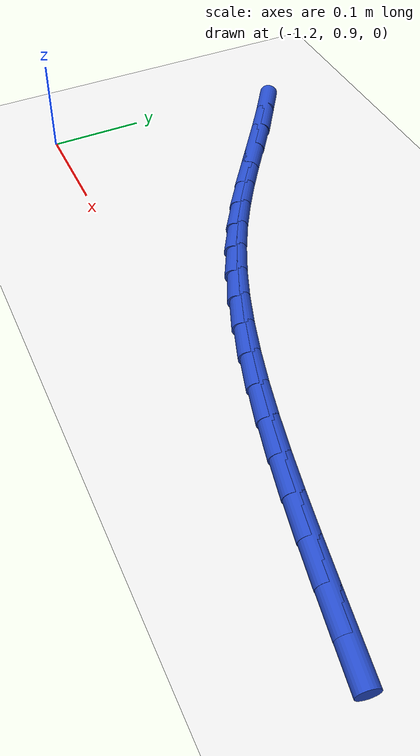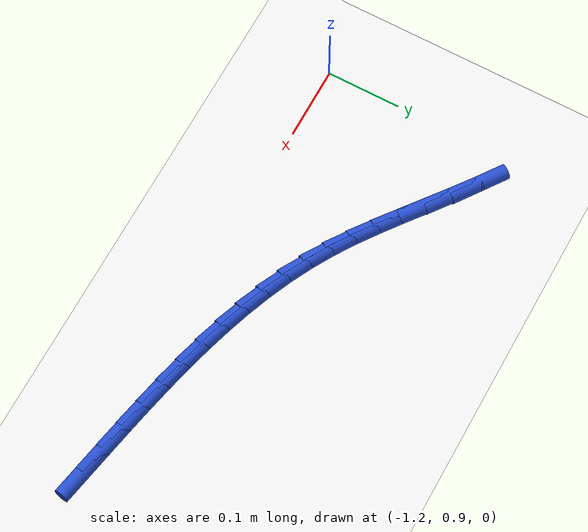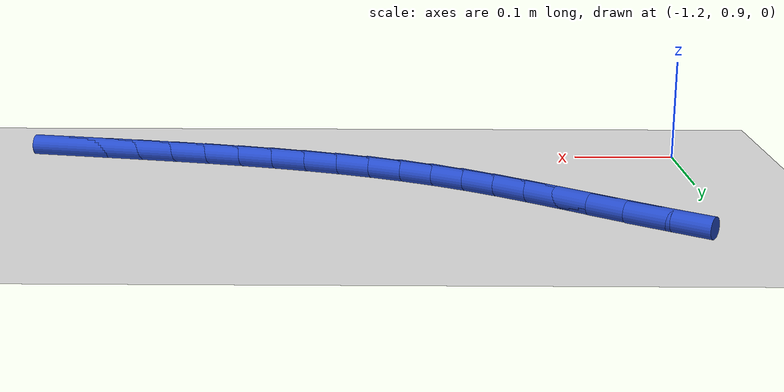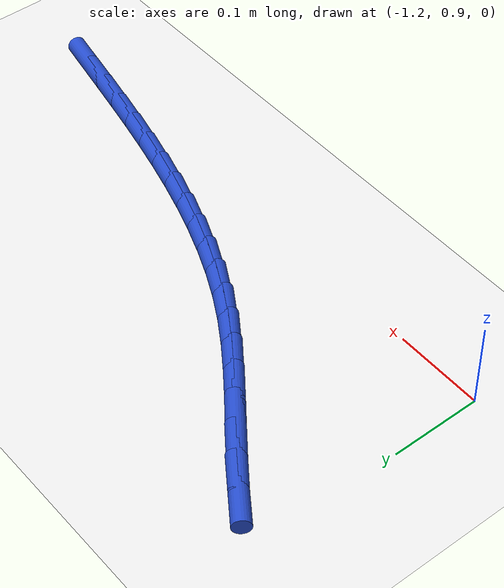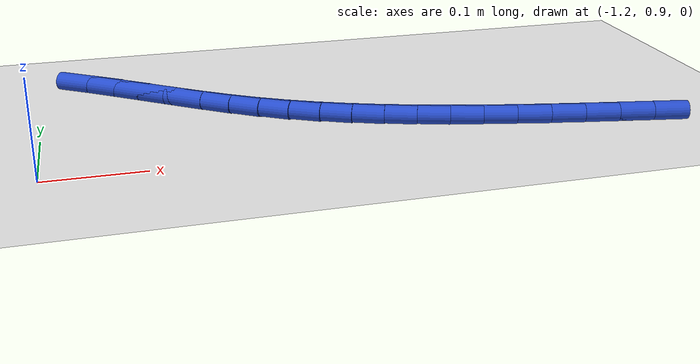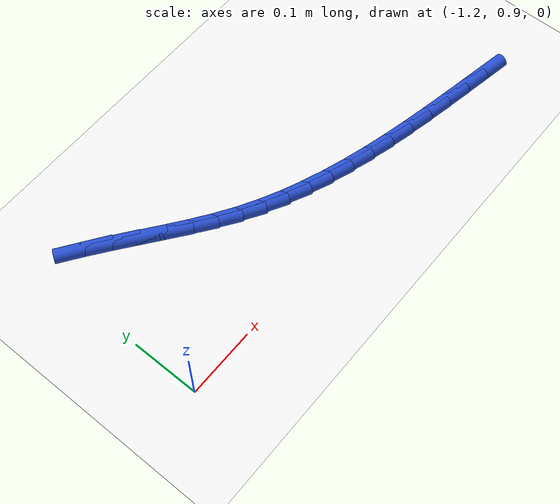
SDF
<sdf version="1.6">
 <world name="default">
  <model name="ground_plane">
   <static>1</static>
   <link name="link">
    <collision name="collision">
     <geometry><plane><normal>0 0 1</normal><size>100 100</size></plane></geometry>
     <surface><friction><ode><mu>100</mu><mu2>50</mu2></ode></friction></surface>
    </collision>
    <visual name="visual">
     <cast_shadows>0</cast_shadows>
     <geometry><plane><normal>0 0 1</normal><size>100 100</size></plane></geometry>
     <material>
      <script><uri>file://media/materials/scripts/gazebo.material</uri><name>Gazebo/WhiteGlow</name></script>
     </material>
    </visual>
   </link>
  </model>
  <model name="line">
   <link name="link_35">
    <pose>-0.5815870989121935 0.8989327731220603 0.01 0 1.57 -0.18526287010277862</pose>
    <collision name="collision">
     <geometry><cylinder><radius>0.01</radius><length>0.08</length></cylinder></geometry>
    </collision>
    <visual name="visual">
     <material>
      <script><name>Gazebo/Blue</name><uri>file://media/materials/scripts/gazebo.material</uri></script>
     </material>
     <geometry><cylinder><radius>0.01</radius><length>0.08</length></cylinder></geometry>
    </visual>
   </link>
   <link name="link_36">
    <pose>-0.6181559296500225 0.9057862082839054 0.01 0 1.57 -0.1890318658535839</pose>
    <collision name="collision">
     <geometry><cylinder><radius>0.01</radius><length>0.08</length></cylinder></geometry>
    </collision>
    <visual name="visual">
     <material>
      <script><name>Gazebo/Blue</name><uri>file://media/materials/scripts/gazebo.material</uri></script>
     </material>
     <geometry><cylinder><radius>0.01</radius><length>0.08</length></cylinder></geometry>
    </visual>
   </link>
   <link name="link_37">
    <pose>-0.6543814149427474 0.9127167261872828 0.01 0 1.57 -0.1984312550376469</pose>
    <collision name="collision">
     <geometry><cylinder><radius>0.01</radius><length>0.08</length></cylinder></geometry>
    </collision>
    <visual name="visual">
     <material>
      <script><name>Gazebo/Blue</name><uri>file://media/materials/scripts/gazebo.material</uri></script>
     </material>
     <geometry><cylinder><radius>0.01</radius><length>0.08</length></cylinder></geometry>
    </visual>
   </link>
   <link name="link_38">
    <pose>-0.6900920482280765 0.919897325571596 0.01 0 1.57 -0.21258586765694568</pose>
    <collision name="collision">
     <geometry><cylinder><radius>0.01</radius><length>0.08</length></cylinder></geometry>
    </collision>
    <visual name="visual">
     <material>
      <script><name>Gazebo/Blue</name><uri>file://media/materials/scripts/gazebo.material</uri></script>
     </material>
     <geometry><cylinder><radius>0.01</radius><length>0.08</length></cylinder></geometry>
    </visual>
   </link>
   <link name="link_39">
    <pose>-0.7252220674548802 0.9274800448106381 0.01 0 1.57 -0.2315281517118318</pose>
    <collision name="collision">
     <geometry><cylinder><radius>0.01</radius><length>0.08</length></cylinder></geometry>
    </collision>
    <visual name="visual">
     <material>
      <script><name>Gazebo/Blue</name><uri>file://media/materials/scripts/gazebo.material</uri></script>
     </material>
     <geometry><cylinder><radius>0.01</radius><length>0.08</length></cylinder></geometry>
    </visual>
   </link>
   <link name="link_40">
    <pose>-0.7597222004778517 0.9356136536976304 0.01 0 1.57 -0.2554704260942258</pose>
    <collision name="collision">
     <geometry><cylinder><radius>0.01</radius><length>0.08</length></cylinder></geometry>
    </collision>
    <visual name="visual">
     <material>
      <script><name>Gazebo/Blue</name><uri>file://media/materials/scripts/gazebo.material</uri></script>
     </material>
     <geometry><cylinder><radius>0.01</radius><length>0.08</length></cylinder></geometry>
    </visual>
   </link>
   <link name="link_41">
    <pose>-0.7935431751516822 0.9444469220257925 0.01 0 1.57 -0.28462118336087255</pose>
    <collision name="collision">
     <geometry><cylinder><radius>0.01</radius><length>0.08</length></cylinder></geometry>
    </collision>
    <visual name="visual">
     <material>
      <script><name>Gazebo/Blue</name><uri>file://media/materials/scripts/gazebo.material</uri></script>
     </material>
     <geometry><cylinder><radius>0.01</radius><length>0.08</length></cylinder></geometry>
    </visual>
   </link>
   <link name="link_42">
    <pose>-0.8266357193310648 0.9541286195883455 0.01 0 1.57 -0.31916606909875794</pose>
    <collision name="collision">
     <geometry><cylinder><radius>0.01</radius><length>0.08</length></cylinder></geometry>
    </collision>
    <visual name="visual">
     <material>
      <script><name>Gazebo/Blue</name><uri>file://media/materials/scripts/gazebo.material</uri></script>
     </material>
     <geometry><cylinder><radius>0.01</radius><length>0.08</length></cylinder></geometry>
    </visual>
   </link>
   <link name="link_43">
    <pose>-0.858950560870692 0.9648075161785099 0.01 0 1.57 -0.35924155960610293</pose>
    <collision name="collision">
     <geometry><cylinder><radius>0.01</radius><length>0.08</length></cylinder></geometry>
    </collision>
    <visual name="visual">
     <material>
      <script><name>Gazebo/Blue</name><uri>file://media/materials/scripts/gazebo.material</uri></script>
     </material>
     <geometry><cylinder><radius>0.01</radius><length>0.08</length></cylinder></geometry>
    </visual>
   </link>
   <link name="link_44">
    <pose>-0.8904384276252557 0.9766323815895059 0.01 0 1.57 -0.40490112511709003</pose>
    <collision name="collision">
     <geometry><cylinder><radius>0.01</radius><length>0.08</length></cylinder></geometry>
    </collision>
    <visual name="visual">
     <material>
      <script><name>Gazebo/Blue</name><uri>file://media/materials/scripts/gazebo.material</uri></script>
     </material>
     <geometry><cylinder><radius>0.01</radius><length>0.08</length></cylinder></geometry>
    </visual>
   </link>
   <link name="link_45">
    <pose>-0.9210500474494485 0.9897519856145541 0.01 0 1.57 -0.45607524401241484</pose>
    <collision name="collision">
     <geometry><cylinder><radius>0.01</radius><length>0.08</length></cylinder></geometry>
    </collision>
    <visual name="visual">
     <material>
      <script><name>Gazebo/Blue</name><uri>file://media/materials/scripts/gazebo.material</uri></script>
     </material>
     <geometry><cylinder><radius>0.01</radius><length>0.08</length></cylinder></geometry>
    </visual>
   </link>
   <link name="link_46">
    <pose>-0.9507361481979625 1.004315098046875 0.01 0 1.57 -0.5124961812330554</pose>
    <collision name="collision">
     <geometry><cylinder><radius>0.01</radius><length>0.08</length></cylinder></geometry>
    </collision>
    <visual name="visual">
     <material>
      <script><name>Gazebo/Blue</name><uri>file://media/materials/scripts/gazebo.material</uri></script>
     </material>
     <geometry><cylinder><radius>0.01</radius><length>0.08</length></cylinder></geometry>
    </visual>
   </link>
   <link name="link_47">
    <pose>-0.9794482579053531 1.0204696937088857 0.01 0 1.57 -0.5682101029825806</pose>
    <collision name="collision">
     <geometry><cylinder><radius>0.01</radius><length>0.08</length></cylinder></geometry>
    </collision>
    <visual name="visual">
     <material>
      <script><name>Gazebo/Blue</name><uri>file://media/materials/scripts/gazebo.material</uri></script>
     </material>
     <geometry><cylinder><radius>0.01</radius><length>0.08</length></cylinder></geometry>
    </visual>
   </link>
   <link name="link_48">
    <pose>-1.007270081614434 1.0382324308688509 0.01 0 1.57 -0.6108612249323891</pose>
    <collision name="collision">
     <geometry><cylinder><radius>0.01</radius><length>0.08</length></cylinder></geometry>
    </collision>
    <visual name="visual">
     <material>
      <script><name>Gazebo/Blue</name><uri>file://media/materials/scripts/gazebo.material</uri></script>
     </material>
     <geometry><cylinder><radius>0.01</radius><length>0.08</length></cylinder></geometry>
    </visual>
   </link>
   <link name="link_49">
    <pose>-1.034563664210379 1.0573434399066775 0.01 0 1.57 -0.6385932322571234</pose>
    <collision name="collision">
     <geometry><cylinder><radius>0.01</radius><length>0.08</length></cylinder></geometry>
    </collision>
    <visual name="visual">
     <material>
      <script><name>Gazebo/Blue</name><uri>file://media/materials/scripts/gazebo.material</uri></script>
     </material>
     <geometry><cylinder><radius>0.01</radius><length>0.08</length></cylinder></geometry>
    </visual>
   </link>
   <link name="link_50">
    <pose>-1.0617262714661142 1.0775078595976428 0.01 0 1.57 -0.6516476514790169</pose>
    <collision name="collision">
     <geometry><cylinder><radius>0.01</radius><length>0.08</length></cylinder></geometry>
    </collision>
    <visual name="visual">
     <material>
      <script><name>Gazebo/Blue</name><uri>file://media/materials/scripts/gazebo.material</uri></script>
     </material>
     <geometry><cylinder><radius>0.01</radius><length>0.08</length></cylinder></geometry>
    </visual>
   </link>
   <link name="link_51">
    <pose>-1.089155169154567 1.0984308287170261 0.01 0 1.57 -0.6506910893379694</pose>
    <collision name="collision">
     <geometry><cylinder><radius>0.01</radius><length>0.08</length></cylinder></geometry>
    </collision>
    <visual name="visual">
     <material>
      <script><name>Gazebo/Blue</name><uri>file://media/materials/scripts/gazebo.material</uri></script>
     </material>
     <geometry><cylinder><radius>0.01</radius><length>0.08</length></cylinder></geometry>
    </visual>
   </link>
   <link name="link_52">
    <pose>-1.1172476230486637 1.119817486040106 0.01 0 1.57 -0.6366725882809615</pose>
    <collision name="collision">
     <geometry><cylinder><radius>0.01</radius><length>0.08</length></cylinder></geometry>
    </collision>
    <visual name="visual">
     <material>
      <script><name>Gazebo/Blue</name><uri>file://media/materials/scripts/gazebo.material</uri></script>
     </material>
     <geometry><cylinder><radius>0.01</radius><length>0.08</length></cylinder></geometry>
    </visual>
   </link>
   <link name="link_53">
    <pose>-1.1464008989213303 1.14137297034216 0.01 0 1.57 -0.6113380053937765</pose>
    <collision name="collision">
     <geometry><cylinder><radius>0.01</radius><length>0.08</length></cylinder></geometry>
    </collision>
    <visual name="visual">
     <material>
      <script><name>Gazebo/Blue</name><uri>file://media/materials/scripts/gazebo.material</uri></script>
     </material>
     <geometry><cylinder><radius>0.01</radius><length>0.08</length></cylinder></geometry>
    </visual>
   </link>
  </model>
 </world>
</sdf>
